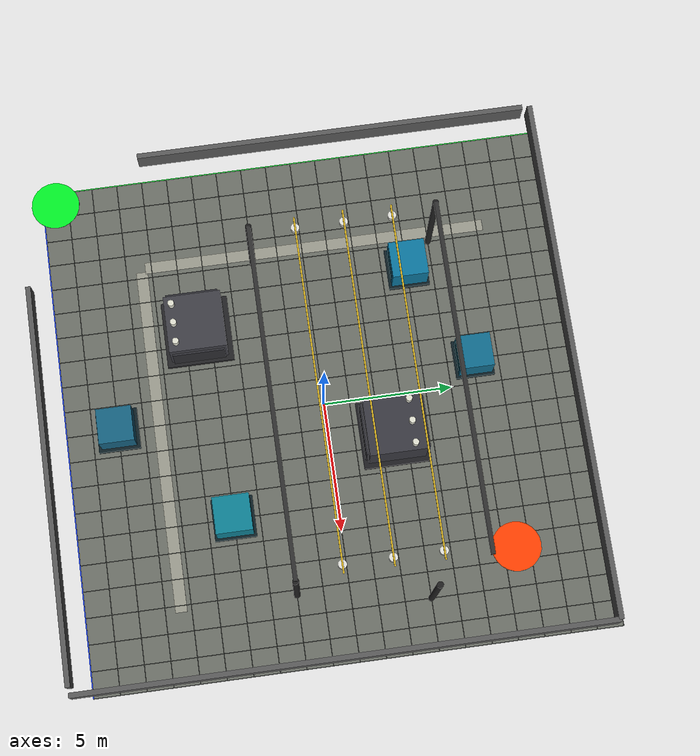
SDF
<?xml version="1.0" ?>
<sdf version="1.9">
  <world name="substation_simple">
    <gravity>0 0 -9.81</gravity>
    <magnetic_field>6e-06 2.3e-05 -4.2e-05</magnetic_field>
    <atmosphere type="adiabatic"/>

    <light name="sun" type="directional">
      <cast_shadows>true</cast_shadows>
      <pose>0 0 10 0 0 0</pose>
      <diffuse>0.8 0.8 0.8 1</diffuse>
      <specular>0.2 0.2 0.2 1</specular>
      <direction>-0.5 0.1 -0.9</direction>
    </light>

    <spherical_coordinates>
      <surface_model>EARTH_WGS84</surface_model>
      <world_frame_orientation>ENU</world_frame_orientation>
      <latitude_deg>47.397971057728974</latitude_deg>
      <longitude_deg> 8.546163739800146</longitude_deg>
      <elevation>0</elevation>
    </spherical_coordinates>

    <model name="substation_map">
      <static>true</static>
      <pose>-10 -10 0 0 0 0</pose>

    <!-- Physics-only ground plane. The visible map is the custom substation_floor below. -->
    <model name="ground_plane">
      <static>true</static>
      <pose>10 10 0 0 0 0</pose>
      <link name="link">
        <collision name="collision">
          <geometry>
            <plane>
              <normal>0 0 1</normal>
              <size>24 24</size>
            </plane>
          </geometry>
        </collision>
      </link>
    </model>

    <!-- Thin visual-only substation map floor. It covers x=0..20 and y=0..20. -->
    <model name="substation_floor">
      <static>true</static>
      <pose>10 10 0.01 0 0 0</pose>
      <link name="link">
        <visual name="visual">
          <geometry>
            <box>
              <size>20 20 0.02</size>
            </box>
          </geometry>
          <material>
            <ambient>0.42 0.43 0.40 1</ambient>
            <diffuse>0.42 0.43 0.40 1</diffuse>
            <specular>0.05 0.05 0.05 1</specular>
          </material>
        </visual>
      </link>
    </model>

    <!-- Visual-only 1 m A* grid on the custom substation floor. -->
    <model name="substation_floor_grid">
      <static>true</static>
      <link name="link">
        <visual name="x_grid_00"><pose>0 10 0.024 0 0 0</pose><geometry><box><size>0.025 20 0.006</size></box></geometry><material><ambient>0.16 0.17 0.16 1</ambient><diffuse>0.16 0.17 0.16 1</diffuse></material></visual>
        <visual name="x_grid_01"><pose>1 10 0.024 0 0 0</pose><geometry><box><size>0.025 20 0.006</size></box></geometry><material><ambient>0.16 0.17 0.16 1</ambient><diffuse>0.16 0.17 0.16 1</diffuse></material></visual>
        <visual name="x_grid_02"><pose>2 10 0.024 0 0 0</pose><geometry><box><size>0.025 20 0.006</size></box></geometry><material><ambient>0.16 0.17 0.16 1</ambient><diffuse>0.16 0.17 0.16 1</diffuse></material></visual>
        <visual name="x_grid_03"><pose>3 10 0.024 0 0 0</pose><geometry><box><size>0.025 20 0.006</size></box></geometry><material><ambient>0.16 0.17 0.16 1</ambient><diffuse>0.16 0.17 0.16 1</diffuse></material></visual>
        <visual name="x_grid_04"><pose>4 10 0.024 0 0 0</pose><geometry><box><size>0.025 20 0.006</size></box></geometry><material><ambient>0.16 0.17 0.16 1</ambient><diffuse>0.16 0.17 0.16 1</diffuse></material></visual>
        <visual name="x_grid_05"><pose>5 10 0.024 0 0 0</pose><geometry><box><size>0.025 20 0.006</size></box></geometry><material><ambient>0.16 0.17 0.16 1</ambient><diffuse>0.16 0.17 0.16 1</diffuse></material></visual>
        <visual name="x_grid_06"><pose>6 10 0.024 0 0 0</pose><geometry><box><size>0.025 20 0.006</size></box></geometry><material><ambient>0.16 0.17 0.16 1</ambient><diffuse>0.16 0.17 0.16 1</diffuse></material></visual>
        <visual name="x_grid_07"><pose>7 10 0.024 0 0 0</pose><geometry><box><size>0.025 20 0.006</size></box></geometry><material><ambient>0.16 0.17 0.16 1</ambient><diffuse>0.16 0.17 0.16 1</diffuse></material></visual>
        <visual name="x_grid_08"><pose>8 10 0.024 0 0 0</pose><geometry><box><size>0.025 20 0.006</size></box></geometry><material><ambient>0.16 0.17 0.16 1</ambient><diffuse>0.16 0.17 0.16 1</diffuse></material></visual>
        <visual name="x_grid_09"><pose>9 10 0.024 0 0 0</pose><geometry><box><size>0.025 20 0.006</size></box></geometry><material><ambient>0.16 0.17 0.16 1</ambient><diffuse>0.16 0.17 0.16 1</diffuse></material></visual>
        <visual name="x_grid_10"><pose>10 10 0.024 0 0 0</pose><geometry><box><size>0.025 20 0.006</size></box></geometry><material><ambient>0.16 0.17 0.16 1</ambient><diffuse>0.16 0.17 0.16 1</diffuse></material></visual>
        <visual name="x_grid_11"><pose>11 10 0.024 0 0 0</pose><geometry><box><size>0.025 20 0.006</size></box></geometry><material><ambient>0.16 0.17 0.16 1</ambient><diffuse>0.16 0.17 0.16 1</diffuse></material></visual>
        <visual name="x_grid_12"><pose>12 10 0.024 0 0 0</pose><geometry><box><size>0.025 20 0.006</size></box></geometry><material><ambient>0.16 0.17 0.16 1</ambient><diffuse>0.16 0.17 0.16 1</diffuse></material></visual>
        <visual name="x_grid_13"><pose>13 10 0.024 0 0 0</pose><geometry><box><size>0.025 20 0.006</size></box></geometry><material><ambient>0.16 0.17 0.16 1</ambient><diffuse>0.16 0.17 0.16 1</diffuse></material></visual>
        <visual name="x_grid_14"><pose>14 10 0.024 0 0 0</pose><geometry><box><size>0.025 20 0.006</size></box></geometry><material><ambient>0.16 0.17 0.16 1</ambient><diffuse>0.16 0.17 0.16 1</diffuse></material></visual>
        <visual name="x_grid_15"><pose>15 10 0.024 0 0 0</pose><geometry><box><size>0.025 20 0.006</size></box></geometry><material><ambient>0.16 0.17 0.16 1</ambient><diffuse>0.16 0.17 0.16 1</diffuse></material></visual>
        <visual name="x_grid_16"><pose>16 10 0.024 0 0 0</pose><geometry><box><size>0.025 20 0.006</size></box></geometry><material><ambient>0.16 0.17 0.16 1</ambient><diffuse>0.16 0.17 0.16 1</diffuse></material></visual>
        <visual name="x_grid_17"><pose>17 10 0.024 0 0 0</pose><geometry><box><size>0.025 20 0.006</size></box></geometry><material><ambient>0.16 0.17 0.16 1</ambient><diffuse>0.16 0.17 0.16 1</diffuse></material></visual>
        <visual name="x_grid_18"><pose>18 10 0.024 0 0 0</pose><geometry><box><size>0.025 20 0.006</size></box></geometry><material><ambient>0.16 0.17 0.16 1</ambient><diffuse>0.16 0.17 0.16 1</diffuse></material></visual>
        <visual name="x_grid_19"><pose>19 10 0.024 0 0 0</pose><geometry><box><size>0.025 20 0.006</size></box></geometry><material><ambient>0.16 0.17 0.16 1</ambient><diffuse>0.16 0.17 0.16 1</diffuse></material></visual>
        <visual name="x_grid_20"><pose>20 10 0.024 0 0 0</pose><geometry><box><size>0.025 20 0.006</size></box></geometry><material><ambient>0.16 0.17 0.16 1</ambient><diffuse>0.16 0.17 0.16 1</diffuse></material></visual>
        <visual name="y_grid_00"><pose>10 0 0.024 0 0 0</pose><geometry><box><size>20 0.025 0.006</size></box></geometry><material><ambient>0.16 0.17 0.16 1</ambient><diffuse>0.16 0.17 0.16 1</diffuse></material></visual>
        <visual name="y_grid_01"><pose>10 1 0.024 0 0 0</pose><geometry><box><size>20 0.025 0.006</size></box></geometry><material><ambient>0.16 0.17 0.16 1</ambient><diffuse>0.16 0.17 0.16 1</diffuse></material></visual>
        <visual name="y_grid_02"><pose>10 2 0.024 0 0 0</pose><geometry><box><size>20 0.025 0.006</size></box></geometry><material><ambient>0.16 0.17 0.16 1</ambient><diffuse>0.16 0.17 0.16 1</diffuse></material></visual>
        <visual name="y_grid_03"><pose>10 3 0.024 0 0 0</pose><geometry><box><size>20 0.025 0.006</size></box></geometry><material><ambient>0.16 0.17 0.16 1</ambient><diffuse>0.16 0.17 0.16 1</diffuse></material></visual>
        <visual name="y_grid_04"><pose>10 4 0.024 0 0 0</pose><geometry><box><size>20 0.025 0.006</size></box></geometry><material><ambient>0.16 0.17 0.16 1</ambient><diffuse>0.16 0.17 0.16 1</diffuse></material></visual>
        <visual name="y_grid_05"><pose>10 5 0.024 0 0 0</pose><geometry><box><size>20 0.025 0.006</size></box></geometry><material><ambient>0.16 0.17 0.16 1</ambient><diffuse>0.16 0.17 0.16 1</diffuse></material></visual>
        <visual name="y_grid_06"><pose>10 6 0.024 0 0 0</pose><geometry><box><size>20 0.025 0.006</size></box></geometry><material><ambient>0.16 0.17 0.16 1</ambient><diffuse>0.16 0.17 0.16 1</diffuse></material></visual>
        <visual name="y_grid_07"><pose>10 7 0.024 0 0 0</pose><geometry><box><size>20 0.025 0.006</size></box></geometry><material><ambient>0.16 0.17 0.16 1</ambient><diffuse>0.16 0.17 0.16 1</diffuse></material></visual>
        <visual name="y_grid_08"><pose>10 8 0.024 0 0 0</pose><geometry><box><size>20 0.025 0.006</size></box></geometry><material><ambient>0.16 0.17 0.16 1</ambient><diffuse>0.16 0.17 0.16 1</diffuse></material></visual>
        <visual name="y_grid_09"><pose>10 9 0.024 0 0 0</pose><geometry><box><size>20 0.025 0.006</size></box></geometry><material><ambient>0.16 0.17 0.16 1</ambient><diffuse>0.16 0.17 0.16 1</diffuse></material></visual>
        <visual name="y_grid_10"><pose>10 10 0.024 0 0 0</pose><geometry><box><size>20 0.025 0.006</size></box></geometry><material><ambient>0.16 0.17 0.16 1</ambient><diffuse>0.16 0.17 0.16 1</diffuse></material></visual>
        <visual name="y_grid_11"><pose>10 11 0.024 0 0 0</pose><geometry><box><size>20 0.025 0.006</size></box></geometry><material><ambient>0.16 0.17 0.16 1</ambient><diffuse>0.16 0.17 0.16 1</diffuse></material></visual>
        <visual name="y_grid_12"><pose>10 12 0.024 0 0 0</pose><geometry><box><size>20 0.025 0.006</size></box></geometry><material><ambient>0.16 0.17 0.16 1</ambient><diffuse>0.16 0.17 0.16 1</diffuse></material></visual>
        <visual name="y_grid_13"><pose>10 13 0.024 0 0 0</pose><geometry><box><size>20 0.025 0.006</size></box></geometry><material><ambient>0.16 0.17 0.16 1</ambient><diffuse>0.16 0.17 0.16 1</diffuse></material></visual>
        <visual name="y_grid_14"><pose>10 14 0.024 0 0 0</pose><geometry><box><size>20 0.025 0.006</size></box></geometry><material><ambient>0.16 0.17 0.16 1</ambient><diffuse>0.16 0.17 0.16 1</diffuse></material></visual>
        <visual name="y_grid_15"><pose>10 15 0.024 0 0 0</pose><geometry><box><size>20 0.025 0.006</size></box></geometry><material><ambient>0.16 0.17 0.16 1</ambient><diffuse>0.16 0.17 0.16 1</diffuse></material></visual>
        <visual name="y_grid_16"><pose>10 16 0.024 0 0 0</pose><geometry><box><size>20 0.025 0.006</size></box></geometry><material><ambient>0.16 0.17 0.16 1</ambient><diffuse>0.16 0.17 0.16 1</diffuse></material></visual>
        <visual name="y_grid_17"><pose>10 17 0.024 0 0 0</pose><geometry><box><size>20 0.025 0.006</size></box></geometry><material><ambient>0.16 0.17 0.16 1</ambient><diffuse>0.16 0.17 0.16 1</diffuse></material></visual>
        <visual name="y_grid_18"><pose>10 18 0.024 0 0 0</pose><geometry><box><size>20 0.025 0.006</size></box></geometry><material><ambient>0.16 0.17 0.16 1</ambient><diffuse>0.16 0.17 0.16 1</diffuse></material></visual>
        <visual name="y_grid_19"><pose>10 19 0.024 0 0 0</pose><geometry><box><size>20 0.025 0.006</size></box></geometry><material><ambient>0.16 0.17 0.16 1</ambient><diffuse>0.16 0.17 0.16 1</diffuse></material></visual>
        <visual name="y_grid_20"><pose>10 20 0.024 0 0 0</pose><geometry><box><size>20 0.025 0.006</size></box></geometry><material><ambient>0.16 0.17 0.16 1</ambient><diffuse>0.16 0.17 0.16 1</diffuse></material></visual>
      </link>
    </model>

    <!-- Visual-only map coordinate aids. The map spans x=0..20 and y=0..20. -->
    <model name="map_origin_marker">
      <static>true</static>
      <pose>0.15 0.15 0.03 0 0 0</pose>
      <link name="link">
        <visual name="visual">
          <geometry>
            <cylinder>
              <radius>0.12</radius>
              <length>0.02</length>
            </cylinder>
          </geometry>
          <material>
            <ambient>1.0 1.0 1.0 1</ambient>
            <diffuse>1.0 1.0 1.0 1</diffuse>
          </material>
        </visual>
      </link>
    </model>

    <model name="east_axis_marker">
      <static>true</static>
      <pose>10 0 0.026 0 0 0</pose>
      <link name="link">
        <visual name="visual">
          <geometry>
            <box>
              <size>20 0.04 0.012</size>
            </box>
          </geometry>
          <material>
            <ambient>0.1 0.25 0.95 1</ambient>
            <diffuse>0.1 0.25 0.95 1</diffuse>
          </material>
        </visual>
      </link>
    </model>

    <model name="north_axis_marker">
      <static>true</static>
      <pose>0 10 0.026 0 0 0</pose>
      <link name="link">
        <visual name="visual">
          <geometry>
            <box>
              <size>0.04 20 0.012</size>
            </box>
          </geometry>
          <material>
            <ambient>0.1 0.75 0.2 1</ambient>
            <diffuse>0.1 0.75 0.2 1</diffuse>
          </material>
        </visual>
      </link>
    </model>

    <!-- Visual-only service corridors painted on the yard floor. -->
    <model name="service_corridor_east_west">
      <static>true</static>
      <pose>10.5 3.6 0.021 0 0 0</pose>
      <link name="link">
        <visual name="visual">
          <geometry>
            <box>
              <size>13.5 0.45 0.01</size>
            </box>
          </geometry>
          <material>
            <ambient>0.60 0.60 0.55 1</ambient>
            <diffuse>0.60 0.60 0.55 1</diffuse>
          </material>
        </visual>
      </link>
    </model>

    <model name="service_corridor_north_south">
      <static>true</static>
      <pose>3.6 10.5 0.021 0 0 0</pose>
      <link name="link">
        <visual name="visual">
          <geometry>
            <box>
              <size>0.45 13.5 0.01</size>
            </box>
          </geometry>
          <material>
            <ambient>0.60 0.60 0.55 1</ambient>
            <diffuse>0.60 0.60 0.55 1</diffuse>
          </material>
        </visual>
      </link>
    </model>

    <!-- Visual-only clear takeoff pad. Keep east -1..3 and north -1..3 free of obstacle collisions. -->
    <model name="start_marker">
      <static>true</static>
      <pose>0.5 0.5 0.035 0 0 0</pose>
      <link name="link">
        <visual name="visual">
          <geometry>
            <cylinder>
              <radius>0.95</radius>
              <length>0.03</length>
            </cylinder>
          </geometry>
          <material>
            <ambient>0.0 0.95 0.15 1</ambient>
            <diffuse>0.0 0.95 0.15 1</diffuse>
            <specular>0.1 0.3 0.1 1</specular>
          </material>
        </visual>
      </link>
    </model>

    <!-- Visual-only goal pad near local east=16, north=16. -->
    <model name="goal_marker">
      <static>true</static>
      <pose>16.5 16.5 0.035 0 0 0</pose>
      <link name="link">
        <visual name="visual">
          <geometry>
            <cylinder>
              <radius>0.95</radius>
              <length>0.03</length>
            </cylinder>
          </geometry>
          <material>
            <ambient>1.0 0.25 0.0 1</ambient>
            <diffuse>1.0 0.25 0.0 1</diffuse>
            <specular>0.35 0.15 0.05 1</specular>
          </material>
        </visual>
      </link>
    </model>

    <!-- Transformer 1: one simple collision box, detailed lightweight visuals. -->
    <model name="transformer_1">
      <static>true</static>
      <plugin filename="gz-sim-label-system" name="gz::sim::systems::Label">
        <label>1</label>
      </plugin>
      <pose>6.5 5.5 0 0 0 0</pose>
      <link name="link">
        <collision name="collision">
          <pose>0 0 0.95 0 0 0</pose>
          <geometry>
            <box>
              <size>2.4 2.4 1.9</size>
            </box>
          </geometry>
        </collision>
        <visual name="base">
          <pose>0 0 0.1 0 0 0</pose>
          <geometry>
            <box>
              <size>2.6 2.6 0.2</size>
            </box>
          </geometry>
          <material>
            <ambient>0.13 0.13 0.14 1</ambient>
            <diffuse>0.13 0.13 0.14 1</diffuse>
          </material>
        </visual>
        <visual name="body">
          <pose>0 0 0.95 0 0 0</pose>
          <geometry>
            <box>
              <size>2.2 2.2 1.5</size>
            </box>
          </geometry>
          <material>
            <ambient>0.24 0.24 0.27 1</ambient>
            <diffuse>0.24 0.24 0.27 1</diffuse>
            <specular>0.15 0.15 0.18 1</specular>
          </material>
        </visual>
        <visual name="cooling_fins_west">
          <pose>-1.18 0 0.95 0 0 0</pose>
          <geometry>
            <box>
              <size>0.08 2.0 1.15</size>
            </box>
          </geometry>
          <material>
            <ambient>0.17 0.17 0.19 1</ambient>
            <diffuse>0.17 0.17 0.19 1</diffuse>
          </material>
        </visual>
        <visual name="cooling_fins_east">
          <pose>1.18 0 0.95 0 0 0</pose>
          <geometry>
            <box>
              <size>0.08 2.0 1.15</size>
            </box>
          </geometry>
          <material>
            <ambient>0.17 0.17 0.19 1</ambient>
            <diffuse>0.17 0.17 0.19 1</diffuse>
          </material>
        </visual>
        <visual name="bushing_a">
          <pose>-0.75 -0.8 1.85 0 0 0</pose>
          <geometry>
            <cylinder>
              <radius>0.12</radius>
              <length>0.3</length>
            </cylinder>
          </geometry>
          <material>
            <ambient>0.88 0.88 0.82 1</ambient>
            <diffuse>0.88 0.88 0.82 1</diffuse>
          </material>
        </visual>
        <visual name="bushing_b">
          <pose>0 -0.8 1.85 0 0 0</pose>
          <geometry>
            <cylinder>
              <radius>0.12</radius>
              <length>0.3</length>
            </cylinder>
          </geometry>
          <material>
            <ambient>0.88 0.88 0.82 1</ambient>
            <diffuse>0.88 0.88 0.82 1</diffuse>
          </material>
        </visual>
        <visual name="bushing_c">
          <pose>0.75 -0.8 1.85 0 0 0</pose>
          <geometry>
            <cylinder>
              <radius>0.12</radius>
              <length>0.3</length>
            </cylinder>
          </geometry>
          <material>
            <ambient>0.88 0.88 0.82 1</ambient>
            <diffuse>0.88 0.88 0.82 1</diffuse>
          </material>
        </visual>
      </link>
    </model>

    <!-- Transformer 2: one simple collision box, detailed lightweight visuals. -->
    <model name="transformer_2">
      <static>true</static>
      <plugin filename="gz-sim-label-system" name="gz::sim::systems::Label">
        <label>1</label>
      </plugin>
      <pose>11.5 12.5 0 0 0 0</pose>
      <link name="link">
        <collision name="collision">
          <pose>0 0 0.95 0 0 0</pose>
          <geometry>
            <box>
              <size>2.4 2.4 1.9</size>
            </box>
          </geometry>
        </collision>
        <visual name="base">
          <pose>0 0 0.1 0 0 0</pose>
          <geometry>
            <box>
              <size>2.6 2.6 0.2</size>
            </box>
          </geometry>
          <material>
            <ambient>0.12 0.12 0.13 1</ambient>
            <diffuse>0.12 0.12 0.13 1</diffuse>
          </material>
        </visual>
        <visual name="body">
          <pose>0 0 0.95 0 0 0</pose>
          <geometry>
            <box>
              <size>2.2 2.2 1.5</size>
            </box>
          </geometry>
          <material>
            <ambient>0.22 0.22 0.25 1</ambient>
            <diffuse>0.22 0.22 0.25 1</diffuse>
            <specular>0.15 0.15 0.18 1</specular>
          </material>
        </visual>
        <visual name="cooling_fins_south">
          <pose>0 -1.18 0.95 0 0 0</pose>
          <geometry>
            <box>
              <size>2.0 0.08 1.15</size>
            </box>
          </geometry>
          <material>
            <ambient>0.16 0.16 0.18 1</ambient>
            <diffuse>0.16 0.16 0.18 1</diffuse>
          </material>
        </visual>
        <visual name="cooling_fins_north">
          <pose>0 1.18 0.95 0 0 0</pose>
          <geometry>
            <box>
              <size>2.0 0.08 1.15</size>
            </box>
          </geometry>
          <material>
            <ambient>0.16 0.16 0.18 1</ambient>
            <diffuse>0.16 0.16 0.18 1</diffuse>
          </material>
        </visual>
        <visual name="bushing_a">
          <pose>-0.85 0.65 1.85 0 0 0</pose>
          <geometry>
            <cylinder>
              <radius>0.12</radius>
              <length>0.3</length>
            </cylinder>
          </geometry>
          <material>
            <ambient>0.88 0.88 0.82 1</ambient>
            <diffuse>0.88 0.88 0.82 1</diffuse>
          </material>
        </visual>
        <visual name="bushing_b">
          <pose>0 0.65 1.85 0 0 0</pose>
          <geometry>
            <cylinder>
              <radius>0.12</radius>
              <length>0.3</length>
            </cylinder>
          </geometry>
          <material>
            <ambient>0.88 0.88 0.82 1</ambient>
            <diffuse>0.88 0.88 0.82 1</diffuse>
          </material>
        </visual>
        <visual name="bushing_c">
          <pose>0.85 0.65 1.85 0 0 0</pose>
          <geometry>
            <cylinder>
              <radius>0.12</radius>
              <length>0.3</length>
            </cylinder>
          </geometry>
          <material>
            <ambient>0.88 0.88 0.82 1</ambient>
            <diffuse>0.88 0.88 0.82 1</diffuse>
          </material>
        </visual>
      </link>
    </model>

    <!-- Control cabinets with simple collisions and attached front panels. -->
    <model name="cabinet_1">
      <static>true</static>
      <pose>5 14 0 0 0 0</pose>
      <link name="link">
        <collision name="collision">
          <pose>0 0 0.7 0 0 0</pose>
          <geometry>
            <box>
              <size>1.6 1.6 1.4</size>
            </box>
          </geometry>
        </collision>
        <visual name="base">
          <pose>0 0 0.1 0 0 0</pose>
          <geometry>
            <box>
              <size>1.6 1.6 0.2</size>
            </box>
          </geometry>
          <material>
            <ambient>0.05 0.12 0.14 1</ambient>
            <diffuse>0.05 0.12 0.14 1</diffuse>
          </material>
        </visual>
        <visual name="body">
          <pose>0 0 0.8 0 0 0</pose>
          <geometry>
            <box>
              <size>1.4 1.4 1.2</size>
            </box>
          </geometry>
          <material>
            <ambient>0.04 0.46 0.62 1</ambient>
            <diffuse>0.04 0.46 0.62 1</diffuse>
            <specular>0.1 0.25 0.35 1</specular>
          </material>
        </visual>
        <visual name="front_panel">
          <pose>0 -0.711 0.82 0 0 0</pose>
          <geometry>
            <box>
              <size>1.05 0.02 0.75</size>
            </box>
          </geometry>
          <material>
            <ambient>0.03 0.25 0.32 1</ambient>
            <diffuse>0.03 0.25 0.32 1</diffuse>
          </material>
        </visual>
      </link>
    </model>

    <model name="cabinet_2">
      <static>true</static>
      <pose>14 6 0 0 0 0</pose>
      <link name="link">
        <collision name="collision">
          <pose>0 0 0.7 0 0 0</pose>
          <geometry>
            <box>
              <size>1.6 1.6 1.4</size>
            </box>
          </geometry>
        </collision>
        <visual name="base">
          <pose>0 0 0.1 0 0 0</pose>
          <geometry>
            <box>
              <size>1.6 1.6 0.2</size>
            </box>
          </geometry>
          <material>
            <ambient>0.05 0.12 0.14 1</ambient>
            <diffuse>0.05 0.12 0.14 1</diffuse>
          </material>
        </visual>
        <visual name="body">
          <pose>0 0 0.8 0 0 0</pose>
          <geometry>
            <box>
              <size>1.4 1.4 1.2</size>
            </box>
          </geometry>
          <material>
            <ambient>0.05 0.50 0.58 1</ambient>
            <diffuse>0.05 0.50 0.58 1</diffuse>
            <specular>0.1 0.25 0.35 1</specular>
          </material>
        </visual>
        <visual name="front_panel">
          <pose>0 -0.711 0.82 0 0 0</pose>
          <geometry>
            <box>
              <size>1.05 0.02 0.75</size>
            </box>
          </geometry>
          <material>
            <ambient>0.03 0.25 0.30 1</ambient>
            <diffuse>0.03 0.25 0.30 1</diffuse>
          </material>
        </visual>
      </link>
    </model>

    <model name="cabinet_3">
      <static>true</static>
      <pose>9 16 0 0 0 0</pose>
      <link name="link">
        <collision name="collision">
          <pose>0 0 0.65 0 0 0</pose>
          <geometry>
            <box>
              <size>1.5 1.5 1.3</size>
            </box>
          </geometry>
        </collision>
        <visual name="base">
          <pose>0 0 0.1 0 0 0</pose>
          <geometry>
            <box>
              <size>1.5 1.5 0.2</size>
            </box>
          </geometry>
          <material>
            <ambient>0.05 0.12 0.14 1</ambient>
            <diffuse>0.05 0.12 0.14 1</diffuse>
          </material>
        </visual>
        <visual name="body">
          <pose>0 0 0.75 0 0 0</pose>
          <geometry>
            <box>
              <size>1.3 1.3 1.1</size>
            </box>
          </geometry>
          <material>
            <ambient>0.06 0.42 0.55 1</ambient>
            <diffuse>0.06 0.42 0.55 1</diffuse>
            <specular>0.1 0.25 0.35 1</specular>
          </material>
        </visual>
        <visual name="front_panel">
          <pose>0 -0.661 0.76 0 0 0</pose>
          <geometry>
            <box>
              <size>1.05 0.02 0.65</size>
            </box>
          </geometry>
          <material>
            <ambient>0.03 0.24 0.30 1</ambient>
            <diffuse>0.03 0.24 0.30 1</diffuse>
          </material>
        </visual>
      </link>
    </model>

    <model name="switchgear_south">
      <static>true</static>
      <plugin filename="gz-sim-label-system" name="gz::sim::systems::Label">
        <label>2</label>
      </plugin>
      <pose>10 2 0 0 0 0</pose>
      <link name="link">
        <collision name="collision">
          <pose>0 0 0.6 0 0 0</pose>
          <geometry>
            <box>
              <size>1.6 1.6 1.2</size>
            </box>
          </geometry>
        </collision>
        <visual name="base">
          <pose>0 0 0.1 0 0 0</pose>
          <geometry>
            <box>
              <size>1.6 1.6 0.2</size>
            </box>
          </geometry>
          <material>
            <ambient>0.05 0.12 0.14 1</ambient>
            <diffuse>0.05 0.12 0.14 1</diffuse>
          </material>
        </visual>
        <visual name="body">
          <pose>0 0 0.72 0 0 0</pose>
          <geometry>
            <box>
              <size>1.35 1.35 1.05</size>
            </box>
          </geometry>
          <material>
            <ambient>0.08 0.38 0.50 1</ambient>
            <diffuse>0.08 0.38 0.50 1</diffuse>
            <specular>0.1 0.25 0.35 1</specular>
          </material>
        </visual>
        <visual name="front_panel">
          <pose>0 -0.686 0.74 0 0 0</pose>
          <geometry>
            <box>
              <size>1.0 0.02 0.65</size>
            </box>
          </geometry>
          <material>
            <ambient>0.03 0.22 0.30 1</ambient>
            <diffuse>0.03 0.22 0.30 1</diffuse>
          </material>
        </visual>
      </link>
    </model>

    <!-- Gantry poles rest on the ground; busbars and insulators are visual-only details. -->
    <model name="pole_west_1">
      <static>true</static>
      <pose>4 8 2.25 0 0 0</pose>
      <link name="link">
        <collision name="collision">
          <geometry>
            <cylinder>
              <radius>0.12</radius>
              <length>4.5</length>
            </cylinder>
          </geometry>
        </collision>
        <visual name="visual">
          <geometry>
            <cylinder>
              <radius>0.12</radius>
              <length>4.5</length>
            </cylinder>
          </geometry>
          <material>
            <ambient>0.12 0.12 0.12 1</ambient>
            <diffuse>0.12 0.12 0.12 1</diffuse>
          </material>
        </visual>
      </link>
    </model>

    <model name="pole_west_2">
      <static>true</static>
      <pose>4 15 2.25 0 0 0</pose>
      <link name="link">
        <collision name="collision">
          <geometry>
            <cylinder>
              <radius>0.12</radius>
              <length>4.5</length>
            </cylinder>
          </geometry>
        </collision>
        <visual name="visual">
          <geometry>
            <cylinder>
              <radius>0.12</radius>
              <length>4.5</length>
            </cylinder>
          </geometry>
          <material>
            <ambient>0.12 0.12 0.12 1</ambient>
            <diffuse>0.12 0.12 0.12 1</diffuse>
          </material>
        </visual>
      </link>
    </model>

    <model name="pole_east_1">
      <static>true</static>
      <pose>17.2 8 2.25 0 0 0</pose>
      <link name="link">
        <collision name="collision">
          <geometry>
            <cylinder>
              <radius>0.12</radius>
              <length>4.5</length>
            </cylinder>
          </geometry>
        </collision>
        <visual name="visual">
          <geometry>
            <cylinder>
              <radius>0.12</radius>
              <length>4.5</length>
            </cylinder>
          </geometry>
          <material>
            <ambient>0.12 0.12 0.12 1</ambient>
            <diffuse>0.12 0.12 0.12 1</diffuse>
          </material>
        </visual>
      </link>
    </model>

    <model name="pole_east_2">
      <static>true</static>
      <pose>18 13 2.25 0 0 0</pose>
      <link name="link">
        <collision name="collision">
          <geometry>
            <cylinder>
              <radius>0.12</radius>
              <length>4.5</length>
            </cylinder>
          </geometry>
        </collision>
        <visual name="visual">
          <geometry>
            <cylinder>
              <radius>0.12</radius>
              <length>4.5</length>
            </cylinder>
          </geometry>
          <material>
            <ambient>0.12 0.12 0.12 1</ambient>
            <diffuse>0.12 0.12 0.12 1</diffuse>
          </material>
        </visual>
      </link>
    </model>

    <model name="gantry_crossbeam_south">
      <static>true</static>
      <pose>10.6 8 4.55 0 0 0</pose>
      <link name="link">
        <visual name="visual">
          <geometry>
            <box>
              <size>13.2 0.16 0.16</size>
            </box>
          </geometry>
          <material>
            <ambient>0.18 0.18 0.18 1</ambient>
            <diffuse>0.18 0.18 0.18 1</diffuse>
          </material>
        </visual>
      </link>
    </model>

    <model name="gantry_crossbeam_north">
      <static>true</static>
      <pose>10.6 15 4.55 0 0 0</pose>
      <link name="link">
        <visual name="visual">
          <geometry>
            <box>
              <size>13.2 0.16 0.16</size>
            </box>
          </geometry>
          <material>
            <ambient>0.18 0.18 0.18 1</ambient>
            <diffuse>0.18 0.18 0.18 1</diffuse>
          </material>
        </visual>
      </link>
    </model>

    <model name="busbar_phase_a">
      <static>true</static>
      <pose>10.6 9.7 4.85 0 0 0</pose>
      <link name="link">
        <visual name="visual">
          <geometry>
            <box>
              <size>13.2 0.06 0.06</size>
            </box>
          </geometry>
          <material>
            <ambient>0.85 0.70 0.12 1</ambient>
            <diffuse>0.85 0.70 0.12 1</diffuse>
          </material>
        </visual>
      </link>
    </model>

    <model name="busbar_phase_b">
      <static>true</static>
      <pose>10.6 11.5 4.95 0 0 0</pose>
      <link name="link">
        <visual name="visual">
          <geometry>
            <box>
              <size>13.2 0.06 0.06</size>
            </box>
          </geometry>
          <material>
            <ambient>0.85 0.70 0.12 1</ambient>
            <diffuse>0.85 0.70 0.12 1</diffuse>
          </material>
        </visual>
      </link>
    </model>

    <model name="busbar_phase_c">
      <static>true</static>
      <pose>10.6 13.3 4.85 0 0 0</pose>
      <link name="link">
        <visual name="visual">
          <geometry>
            <box>
              <size>13.2 0.06 0.06</size>
            </box>
          </geometry>
          <material>
            <ambient>0.85 0.70 0.12 1</ambient>
            <diffuse>0.85 0.70 0.12 1</diffuse>
          </material>
        </visual>
      </link>
    </model>

    <model name="insulator_cluster_west">
      <static>true</static>
      <pose>4.35 11.5 4.65 0 0 0</pose>
      <link name="link">
        <visual name="disc_a">
          <pose>0 -1.8 0 0 0 0</pose>
          <geometry>
            <cylinder>
              <radius>0.16</radius>
              <length>0.18</length>
            </cylinder>
          </geometry>
          <material>
            <ambient>0.88 0.88 0.86 1</ambient>
            <diffuse>0.88 0.88 0.86 1</diffuse>
          </material>
        </visual>
        <visual name="disc_b">
          <pose>0 0 0 0 0 0</pose>
          <geometry>
            <cylinder>
              <radius>0.16</radius>
              <length>0.18</length>
            </cylinder>
          </geometry>
          <material>
            <ambient>0.88 0.88 0.86 1</ambient>
            <diffuse>0.88 0.88 0.86 1</diffuse>
          </material>
        </visual>
        <visual name="disc_c">
          <pose>0 1.8 0 0 0 0</pose>
          <geometry>
            <cylinder>
              <radius>0.16</radius>
              <length>0.18</length>
            </cylinder>
          </geometry>
          <material>
            <ambient>0.88 0.88 0.86 1</ambient>
            <diffuse>0.88 0.88 0.86 1</diffuse>
          </material>
        </visual>
      </link>
    </model>

    <model name="insulator_cluster_east">
      <static>true</static>
      <pose>16.85 11.5 4.65 0 0 0</pose>
      <link name="link">
        <visual name="disc_a">
          <pose>0 -1.8 0 0 0 0</pose>
          <geometry>
            <cylinder>
              <radius>0.16</radius>
              <length>0.18</length>
            </cylinder>
          </geometry>
          <material>
            <ambient>0.88 0.88 0.86 1</ambient>
            <diffuse>0.88 0.88 0.86 1</diffuse>
          </material>
        </visual>
        <visual name="disc_b">
          <pose>0 0 0 0 0 0</pose>
          <geometry>
            <cylinder>
              <radius>0.16</radius>
              <length>0.18</length>
            </cylinder>
          </geometry>
          <material>
            <ambient>0.88 0.88 0.86 1</ambient>
            <diffuse>0.88 0.88 0.86 1</diffuse>
          </material>
        </visual>
        <visual name="disc_c">
          <pose>0 1.8 0 0 0 0</pose>
          <geometry>
            <cylinder>
              <radius>0.16</radius>
              <length>0.18</length>
            </cylinder>
          </geometry>
          <material>
            <ambient>0.88 0.88 0.86 1</ambient>
            <diffuse>0.88 0.88 0.86 1</diffuse>
          </material>
        </visual>
      </link>
    </model>

    <!-- Boundary walls leave the southwest takeoff zone open. Wall z=0.45 for height 0.9. -->
    <model name="fence_north">
      <static>true</static>
      <pose>9.5 19.8 0.45 0 0 0</pose>
      <link name="link">
        <collision name="collision">
          <geometry>
            <box>
              <size>20.6 0.2 0.9</size>
            </box>
          </geometry>
        </collision>
        <visual name="visual">
          <geometry>
            <box>
              <size>20.6 0.2 0.9</size>
            </box>
          </geometry>
          <material>
            <ambient>0.35 0.35 0.35 1</ambient>
            <diffuse>0.35 0.35 0.35 1</diffuse>
          </material>
        </visual>
      </link>
    </model>

    <model name="fence_east">
      <static>true</static>
      <pose>19.8 9.5 0.45 0 0 0</pose>
      <link name="link">
        <collision name="collision">
          <geometry>
            <box>
              <size>0.2 20.6 0.9</size>
            </box>
          </geometry>
        </collision>
        <visual name="visual">
          <geometry>
            <box>
              <size>0.2 20.6 0.9</size>
            </box>
          </geometry>
          <material>
            <ambient>0.35 0.35 0.35 1</ambient>
            <diffuse>0.35 0.35 0.35 1</diffuse>
          </material>
        </visual>
      </link>
    </model>

    <model name="fence_south">
      <static>true</static>
      <pose>11.75 -0.8 0.45 0 0 0</pose>
      <link name="link">
        <collision name="collision">
          <geometry>
            <box>
              <size>15.5 0.2 0.9</size>
            </box>
          </geometry>
        </collision>
        <visual name="visual">
          <geometry>
            <box>
              <size>15.5 0.2 0.9</size>
            </box>
          </geometry>
          <material>
            <ambient>0.35 0.35 0.35 1</ambient>
            <diffuse>0.35 0.35 0.35 1</diffuse>
          </material>
        </visual>
      </link>
    </model>

    <model name="fence_west">
      <static>true</static>
      <pose>-0.8 11.75 0.45 0 0 0</pose>
      <link name="link">
        <collision name="collision">
          <geometry>
            <box>
              <size>0.2 15.5 0.9</size>
            </box>
          </geometry>
        </collision>
        <visual name="visual">
          <geometry>
            <box>
              <size>0.2 15.5 0.9</size>
            </box>
          </geometry>
          <material>
            <ambient>0.35 0.35 0.35 1</ambient>
            <diffuse>0.35 0.35 0.35 1</diffuse>
          </material>
        </visual>
      </link>
    </model>
    </model>
  </world>
</sdf>
